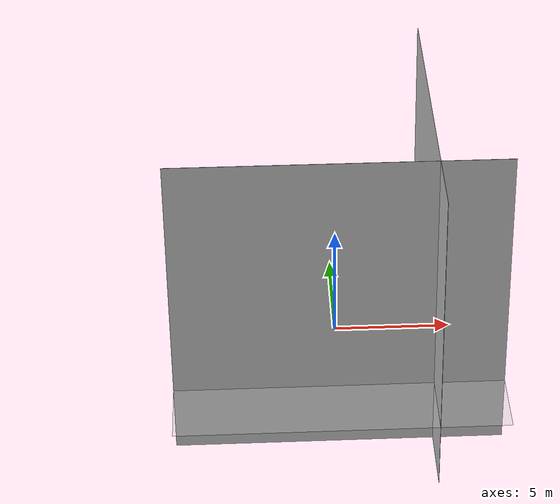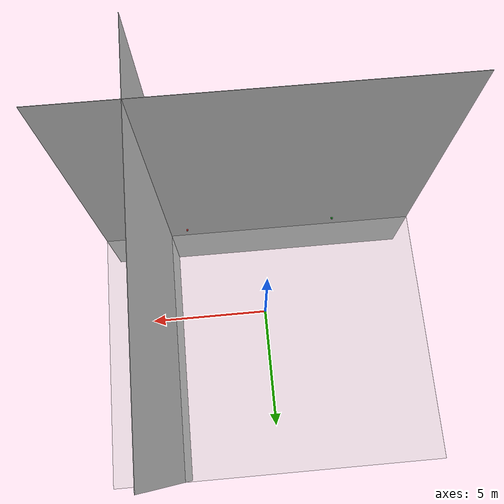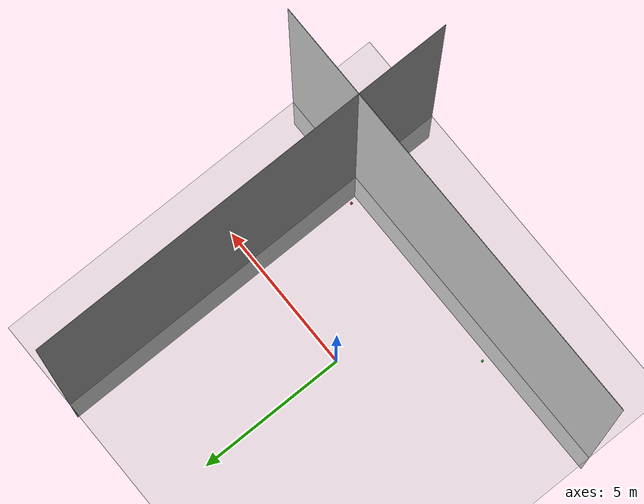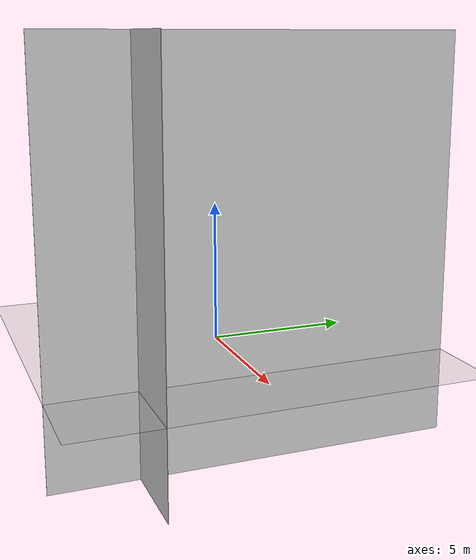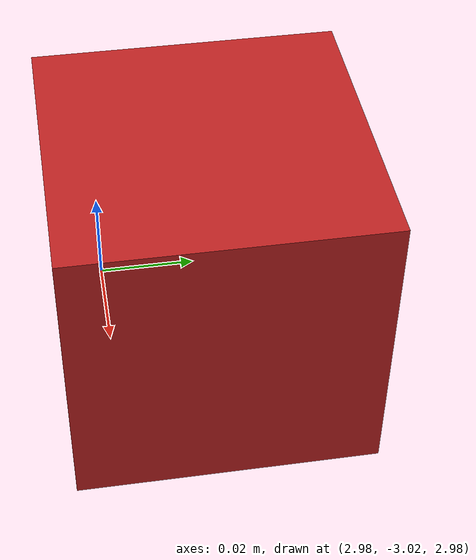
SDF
<?xml version="1.0" ?>
<sdf version='1.6'>
  <world name='default'>
    <light name='sun' type='directional'>
      <cast_shadows>1</cast_shadows>
      <pose frame=''>0 0 10 0 -0 0</pose>
      <diffuse>0.8 0.8 0.8 1</diffuse>
      <specular>0.2 0.2 0.2 1</specular>
      <attenuation>
        <range>1000</range>
        <constant>0.9</constant>
        <linear>0.01</linear>
        <quadratic>0.001</quadratic>
      </attenuation>
      <direction>-0.5 0.1 -0.9</direction>
    </light>
    <model name='unit_box'>
      <static>1</static>
      <pose frame=''>-3 -3 3 0 -0 0</pose>
      <link name='link'>
        <inertial>
          <mass>1</mass>
          <inertia>
            <ixx>0.166667</ixx>
            <ixy>0</ixy>
            <ixz>0</ixz>
            <iyy>0.166667</iyy>
            <iyz>0</iyz>
            <izz>0.166667</izz>
          </inertia>
          <pose frame=''>0 0 0 0 -0 0</pose>
        </inertial>
        <visual name='visual'>
          <geometry>
            <box>
              <size>0.06 0.06 0.06</size>
            </box>
          </geometry>
          <material>
            <script>
              <name>Gazebo/Green</name>
              <uri>file://media/materials/scripts/gazebo.material</uri>
            </script>
          </material>
        </visual>
        <self_collide>0</self_collide>
        <enable_wind>0</enable_wind>
        <kinematic>0</kinematic>
      </link>
    </model>
    <model name='unit_box1'>
      <static>1</static>
      <pose frame=''>3 -3 3 0 -0 0</pose>
      <link name='link'>
        <inertial>
          <mass>1</mass>
          <inertia>
            <ixx>0.166667</ixx>
            <ixy>0</ixy>
            <ixz>0</ixz>
            <iyy>0.166667</iyy>
            <iyz>0</iyz>
            <izz>0.166667</izz>
          </inertia>
          <pose frame=''>0 0 0 0 -0 0</pose>
        </inertial>
        <visual name='visual'>
          <geometry>
            <box>
              <size>0.06 0.06 0.06</size>
            </box>
          </geometry>
          <material>
            <script>
              <name>Gazebo/Red</name>
              <uri>file://media/materials/scripts/gazebo.material</uri>
            </script>
          </material>
        </visual>
        <self_collide>0</self_collide>
        <enable_wind>0</enable_wind>
        <kinematic>0</kinematic>
      </link>
    </model>
    <plugin name='ros_interface_plugin' filename='librotors_gazebo_ros_interface_plugin.so'/>
    <physics name='default_physics' default='0' type='ode'>
      <ode>
        <solver>
          <type>quick</type>
          <iters>10</iters>
          <sor>1.3</sor>
          <use_dynamic_moi_rescaling>0</use_dynamic_moi_rescaling>
        </solver>
        <constraints>
          <cfm>0</cfm>
          <erp>0.2</erp>
          <contact_max_correcting_vel>100</contact_max_correcting_vel>
          <contact_surface_layer>0.001</contact_surface_layer>
        </constraints>
      </ode>
      <max_step_size>0.002</max_step_size>
      <real_time_factor>1</real_time_factor>
      <real_time_update_rate>500</real_time_update_rate>
    </physics>
    <gravity>0 0 -9.8066</gravity>
    <magnetic_field>6e-06 2.3e-05 -4.2e-05</magnetic_field>
    <atmosphere type='adiabatic'/>
    <scene>
      <ambient>0.4 0.4 0.4 1</ambient>
      <background>0.7 0.7 0.7 1</background>
      <shadows>1</shadows>
    </scene>
    <audio>
      <device>default</device>
    </audio>
    <wind/>
    <spherical_coordinates>
      <surface_model>EARTH_WGS84</surface_model>
      <latitude_deg>0</latitude_deg>
      <longitude_deg>0</longitude_deg>
      <elevation>0</elevation>
      <heading_deg>0</heading_deg>
    </spherical_coordinates>
    <model name='texture_plane'>
      <static>1</static>
      <link name='link'>
        <collision name='collision'>
          <geometry>
            <plane>
              <normal>0 0 1</normal>
              <size>14 14</size>
            </plane>
          </geometry>
          <surface>
            <friction>
              <ode>
                <mu>100</mu>
                <mu2>50</mu2>
              </ode>
              <torsional>
                <ode/>
              </torsional>
            </friction>
            <contact>
              <ode/>
            </contact>
            <bounce/>
          </surface>
          <max_contacts>10</max_contacts>
        </collision>
        <visual name='visual'>
          <cast_shadows>0</cast_shadows>
          <geometry>
            <plane>
              <normal>0 0 1</normal>
              <size>14 14</size>
            </plane>
          </geometry>
          <material>
            <script>
              <uri>model://texture_plane/materials/scripts</uri>
              <uri>model://texture_plane/materials/textures/</uri>
              <name>texture_plane/tracking_test</name>
            </script>
          </material>
        </visual>
        <self_collide>0</self_collide>
        <enable_wind>0</enable_wind>
        <kinematic>0</kinematic>
      </link>
      <pose frame=''>0 0 0 0 -0 3.14159</pose>
    </model>
    <gui fullscreen='0'>
      <camera name='user_camera'>
        <pose frame=''>9.79971 -14.229 14.0078 -0 0.747643 2.17619</pose>
        <view_controller>orbit</view_controller>
        <projection_type>perspective</projection_type>
      </camera>
    </gui>
    <model name='texture_wall'>
      <static>1</static>
      <link name='link'>
        <visual name='visual'>
          <cast_shadows>0</cast_shadows>
          <geometry>
            <plane>
              <normal>0 0 1</normal>
              <size>14 14</size>
            </plane>
          </geometry>
          <material>
            <script>
              <uri>model://texture_wall/materials/scripts</uri>
              <uri>model://texture_wall/materials/textures/</uri>
              <name>texture_wall/tracking_wall</name>
            </script>
          </material>
        </visual>
        <self_collide>0</self_collide>
        <enable_wind>0</enable_wind>
        <kinematic>0</kinematic>
      </link>
      <pose frame=''>0 -4 4 -1.573 0 0</pose>
    </model>
    <model name='texture_wall_0'>
      <static>1</static>
      <link name='link'>
        <visual name='visual'>
          <cast_shadows>0</cast_shadows>
          <geometry>
            <plane>
              <normal>0 0 1</normal>
              <size>14 14</size>
            </plane>
          </geometry>
          <material>
            <script>
              <uri>model://texture_wall/materials/scripts</uri>
              <uri>model://texture_wall/materials/textures/</uri>
              <name>texture_wall/tracking_wall</name>
            </script>
          </material>
        </visual>
        <self_collide>0</self_collide>
        <enable_wind>0</enable_wind>
        <kinematic>0</kinematic>
      </link>
      <pose frame=''>4 0 4 00 1.573 3.141590</pose>
    </model>
  </world>
</sdf>
